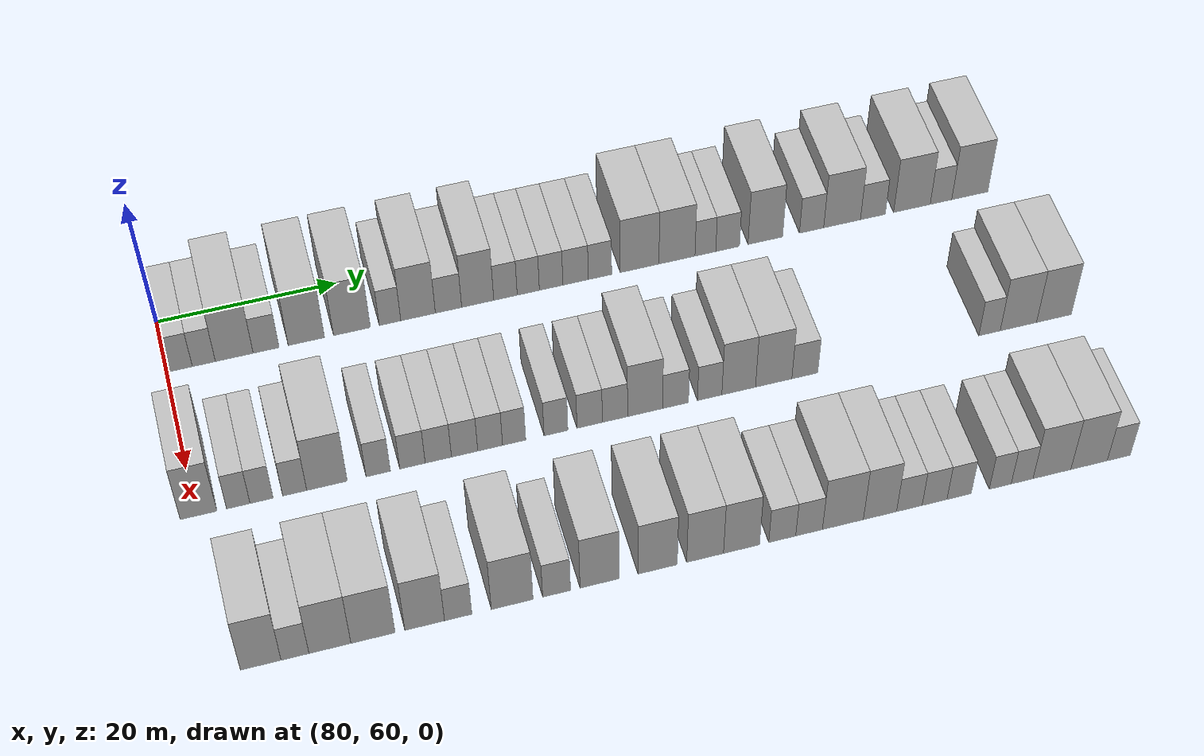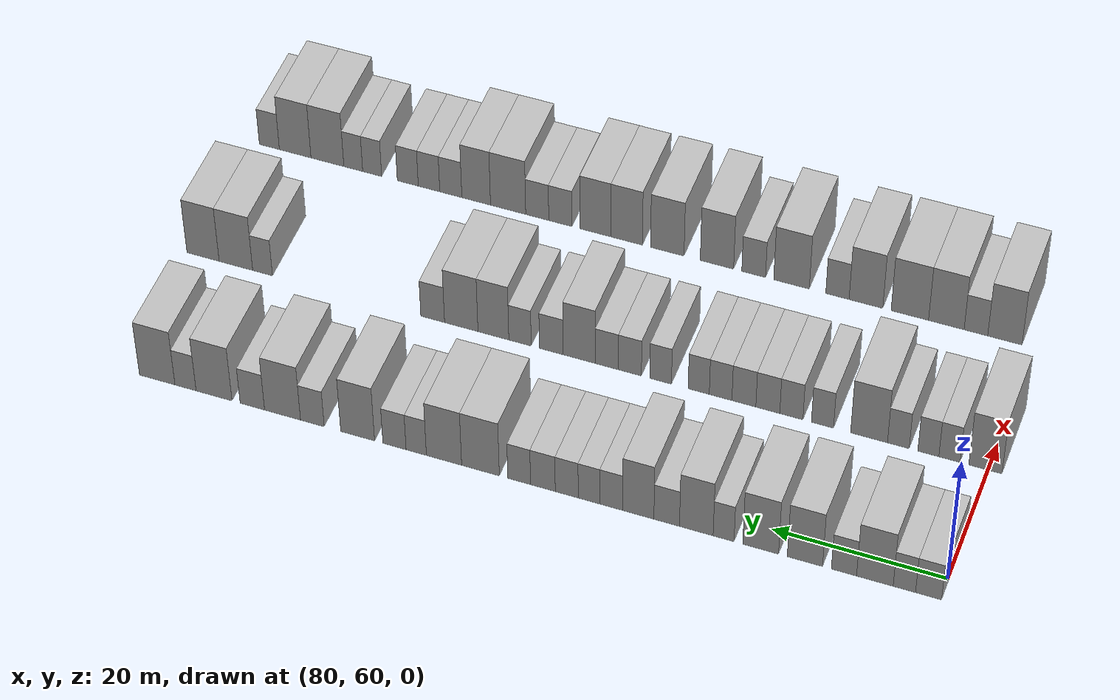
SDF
<sdf version="1.6">
 <world name="default">
  <model name="building_613">
   <static>1</static>
   <pose>82.0000 61.3268 0 0.000000 0.000000 0.000000</pose>
   <link name="link">
    <pose>0 0 3.00 0 0 0</pose>
    <collision name="collision"><geometry><box><size>10.0000 2.9225 6.0000</size></box></geometry></collision>
    <visual name="visual">
     <cast_shadows>0</cast_shadows>
     <geometry><box><size>10.0000 2.9225 6.0000</size></box></geometry>
     <material>
      <script>
       <uri>model://HANNAS_wall/materials/scripts</uri>
       <uri>model://HANNAS_wall/materials/textures</uri>
       <name>vrc/HANNAS_wall</name>
      </script>
     </material>
    </visual>
   </link>
  </model>
  <model name="building_614">
   <static>1</static>
   <pose>82.0000 64.0444 0 0.000000 0.000000 0.000000</pose>
   <link name="link">
    <pose>0 0 3.00 0 0 0</pose>
    <collision name="collision"><geometry><box><size>10.0000 2.5126 6.0000</size></box></geometry></collision>
    <visual name="visual">
     <cast_shadows>0</cast_shadows>
     <geometry><box><size>10.0000 2.5126 6.0000</size></box></geometry>
     <material>
      <script>
       <uri>model://HANNAS_wall/materials/scripts</uri>
       <uri>model://HANNAS_wall/materials/textures</uri>
       <name>vrc/HANNAS_wall</name>
      </script>
     </material>
    </visual>
   </link>
  </model>
  <model name="building_615">
   <static>1</static>
   <pose>82.0000 67.3659 0 0.000000 0.000000 0.000000</pose>
   <link name="link">
    <pose>0 0 4.50 0 0 0</pose>
    <collision name="collision"><geometry><box><size>10.0000 4.1306 9.0000</size></box></geometry></collision>
    <visual name="visual">
     <cast_shadows>0</cast_shadows>
     <geometry><box><size>10.0000 4.1306 9.0000</size></box></geometry>
     <material>
      <script>
       <uri>model://HANNAS_wall/materials/scripts</uri>
       <uri>model://HANNAS_wall/materials/textures</uri>
       <name>vrc/HANNAS_wall</name>
      </script>
     </material>
    </visual>
   </link>
  </model>
  <model name="building_616">
   <static>1</static>
   <pose>82.0000 70.8578 0 0.000000 0.000000 0.000000</pose>
   <link name="link">
    <pose>0 0 3.00 0 0 0</pose>
    <collision name="collision"><geometry><box><size>10.0000 2.8531 6.0000</size></box></geometry></collision>
    <visual name="visual">
     <cast_shadows>0</cast_shadows>
     <geometry><box><size>10.0000 2.8531 6.0000</size></box></geometry>
     <material>
      <script>
       <uri>model://HANNAS_wall/materials/scripts</uri>
       <uri>model://HANNAS_wall/materials/textures</uri>
       <name>vrc/HANNAS_wall</name>
      </script>
     </material>
    </visual>
   </link>
  </model>
  <model name="building_617">
   <static>1</static>
   <pose>82.0000 75.2893 0 0.000000 0.000000 0.000000</pose>
   <link name="link">
    <pose>0 0 4.50 0 0 0</pose>
    <collision name="collision"><geometry><box><size>10.0000 4.0099 9.0000</size></box></geometry></collision>
    <visual name="visual">
     <cast_shadows>0</cast_shadows>
     <geometry><box><size>10.0000 4.0099 9.0000</size></box></geometry>
     <material>
      <script>
       <uri>model://HANNAS_wall/materials/scripts</uri>
       <uri>model://HANNAS_wall/materials/textures</uri>
       <name>vrc/HANNAS_wall</name>
      </script>
     </material>
    </visual>
   </link>
  </model>
  <model name="building_618">
   <static>1</static>
   <pose>82.0000 80.3431 0 0.000000 0.000000 0.000000</pose>
   <link name="link">
    <pose>0 0 4.50 0 0 0</pose>
    <collision name="collision"><geometry><box><size>10.0000 4.0976 9.0000</size></box></geometry></collision>
    <visual name="visual">
     <cast_shadows>0</cast_shadows>
     <geometry><box><size>10.0000 4.0976 9.0000</size></box></geometry>
     <material>
      <script>
       <uri>model://HANNAS_wall/materials/scripts</uri>
       <uri>model://HANNAS_wall/materials/textures</uri>
       <name>vrc/HANNAS_wall</name>
      </script>
     </material>
    </visual>
   </link>
  </model>
  <model name="building_619">
   <static>1</static>
   <pose>82.0000 84.5944 0 0.000000 0.000000 0.000000</pose>
   <link name="link">
    <pose>0 0 3.00 0 0 0</pose>
    <collision name="collision"><geometry><box><size>10.0000 2.4051 6.0000</size></box></geometry></collision>
    <visual name="visual">
     <cast_shadows>0</cast_shadows>
     <geometry><box><size>10.0000 2.4051 6.0000</size></box></geometry>
     <material>
      <script>
       <uri>model://HANNAS_wall/materials/scripts</uri>
       <uri>model://HANNAS_wall/materials/textures</uri>
       <name>vrc/HANNAS_wall</name>
      </script>
     </material>
    </visual>
   </link>
  </model>
  <model name="building_620">
   <static>1</static>
   <pose>82.0000 87.7371 0 0.000000 0.000000 0.000000</pose>
   <link name="link">
    <pose>0 0 4.50 0 0 0</pose>
    <collision name="collision"><geometry><box><size>10.0000 3.8803 9.0000</size></box></geometry></collision>
    <visual name="visual">
     <cast_shadows>0</cast_shadows>
     <geometry><box><size>10.0000 3.8803 9.0000</size></box></geometry>
     <material>
      <script>
       <uri>model://HANNAS_wall/materials/scripts</uri>
       <uri>model://HANNAS_wall/materials/textures</uri>
       <name>vrc/HANNAS_wall</name>
      </script>
     </material>
    </visual>
   </link>
  </model>
  <model name="building_621">
   <static>1</static>
   <pose>82.0000 91.1590 0 0.000000 0.000000 0.000000</pose>
   <link name="link">
    <pose>0 0 3.00 0 0 0</pose>
    <collision name="collision"><geometry><box><size>10.0000 2.9634 6.0000</size></box></geometry></collision>
    <visual name="visual">
     <cast_shadows>0</cast_shadows>
     <geometry><box><size>10.0000 2.9634 6.0000</size></box></geometry>
     <material>
      <script>
       <uri>model://HANNAS_wall/materials/scripts</uri>
       <uri>model://HANNAS_wall/materials/textures</uri>
       <name>vrc/HANNAS_wall</name>
      </script>
     </material>
    </visual>
   </link>
  </model>
  <model name="building_622">
   <static>1</static>
   <pose>82.0000 94.4550 0 0.000000 0.000000 0.000000</pose>
   <link name="link">
    <pose>0 0 4.50 0 0 0</pose>
    <collision name="collision"><geometry><box><size>10.0000 3.6285 9.0000</size></box></geometry></collision>
    <visual name="visual">
     <cast_shadows>0</cast_shadows>
     <geometry><box><size>10.0000 3.6285 9.0000</size></box></geometry>
     <material>
      <script>
       <uri>model://HANNAS_wall/materials/scripts</uri>
       <uri>model://HANNAS_wall/materials/textures</uri>
       <name>vrc/HANNAS_wall</name>
      </script>
     </material>
    </visual>
   </link>
  </model>
  <model name="building_623">
   <static>1</static>
   <pose>82.0000 97.6026 0 0.000000 0.000000 0.000000</pose>
   <link name="link">
    <pose>0 0 3.00 0 0 0</pose>
    <collision name="collision"><geometry><box><size>10.0000 2.6668 6.0000</size></box></geometry></collision>
    <visual name="visual">
     <cast_shadows>0</cast_shadows>
     <geometry><box><size>10.0000 2.6668 6.0000</size></box></geometry>
     <material>
      <script>
       <uri>model://HANNAS_wall/materials/scripts</uri>
       <uri>model://HANNAS_wall/materials/textures</uri>
       <name>vrc/HANNAS_wall</name>
      </script>
     </material>
    </visual>
   </link>
  </model>
  <model name="building_624">
   <static>1</static>
   <pose>82.0000 100.1983 0 0.000000 0.000000 0.000000</pose>
   <link name="link">
    <pose>0 0 3.00 0 0 0</pose>
    <collision name="collision"><geometry><box><size>10.0000 2.5246 6.0000</size></box></geometry></collision>
    <visual name="visual">
     <cast_shadows>0</cast_shadows>
     <geometry><box><size>10.0000 2.5246 6.0000</size></box></geometry>
     <material>
      <script>
       <uri>model://HANNAS_wall/materials/scripts</uri>
       <uri>model://HANNAS_wall/materials/textures</uri>
       <name>vrc/HANNAS_wall</name>
      </script>
     </material>
    </visual>
   </link>
  </model>
  <model name="building_625">
   <static>1</static>
   <pose>82.0000 102.8044 0 0.000000 0.000000 0.000000</pose>
   <link name="link">
    <pose>0 0 3.00 0 0 0</pose>
    <collision name="collision"><geometry><box><size>10.0000 2.6876 6.0000</size></box></geometry></collision>
    <visual name="visual">
     <cast_shadows>0</cast_shadows>
     <geometry><box><size>10.0000 2.6876 6.0000</size></box></geometry>
     <material>
      <script>
       <uri>model://HANNAS_wall/materials/scripts</uri>
       <uri>model://HANNAS_wall/materials/textures</uri>
       <name>vrc/HANNAS_wall</name>
      </script>
     </material>
    </visual>
   </link>
  </model>
  <model name="building_626">
   <static>1</static>
   <pose>82.0000 105.6038 0 0.000000 0.000000 0.000000</pose>
   <link name="link">
    <pose>0 0 3.00 0 0 0</pose>
    <collision name="collision"><geometry><box><size>10.0000 2.9111 6.0000</size></box></geometry></collision>
    <visual name="visual">
     <cast_shadows>0</cast_shadows>
     <geometry><box><size>10.0000 2.9111 6.0000</size></box></geometry>
     <material>
      <script>
       <uri>model://HANNAS_wall/materials/scripts</uri>
       <uri>model://HANNAS_wall/materials/textures</uri>
       <name>vrc/HANNAS_wall</name>
      </script>
     </material>
    </visual>
   </link>
  </model>
  <model name="building_627">
   <static>1</static>
   <pose>82.0000 108.4013 0 0.000000 0.000000 0.000000</pose>
   <link name="link">
    <pose>0 0 3.00 0 0 0</pose>
    <collision name="collision"><geometry><box><size>10.0000 2.6839 6.0000</size></box></geometry></collision>
    <visual name="visual">
     <cast_shadows>0</cast_shadows>
     <geometry><box><size>10.0000 2.6839 6.0000</size></box></geometry>
     <material>
      <script>
       <uri>model://HANNAS_wall/materials/scripts</uri>
       <uri>model://HANNAS_wall/materials/textures</uri>
       <name>vrc/HANNAS_wall</name>
      </script>
     </material>
    </visual>
   </link>
  </model>
  <model name="building_628">
   <static>1</static>
   <pose>82.0000 112.9791 0 0.000000 0.000000 0.000000</pose>
   <link name="link">
    <pose>0 0 4.50 0 0 0</pose>
    <collision name="collision"><geometry><box><size>10.0000 4.4717 9.0000</size></box></geometry></collision>
    <visual name="visual">
     <cast_shadows>0</cast_shadows>
     <geometry><box><size>10.0000 4.4717 9.0000</size></box></geometry>
     <material>
      <script>
       <uri>model://HANNAS_wall/materials/scripts</uri>
       <uri>model://HANNAS_wall/materials/textures</uri>
       <name>vrc/HANNAS_wall</name>
      </script>
     </material>
    </visual>
   </link>
  </model>
  <model name="building_629">
   <static>1</static>
   <pose>82.0000 117.3141 0 0.000000 0.000000 0.000000</pose>
   <link name="link">
    <pose>0 0 4.50 0 0 0</pose>
    <collision name="collision"><geometry><box><size>10.0000 4.1984 9.0000</size></box></geometry></collision>
    <visual name="visual">
     <cast_shadows>0</cast_shadows>
     <geometry><box><size>10.0000 4.1984 9.0000</size></box></geometry>
     <material>
      <script>
       <uri>model://HANNAS_wall/materials/scripts</uri>
       <uri>model://HANNAS_wall/materials/textures</uri>
       <name>vrc/HANNAS_wall</name>
      </script>
     </material>
    </visual>
   </link>
  </model>
  <model name="building_630">
   <static>1</static>
   <pose>82.0000 120.6281 0 0.000000 0.000000 0.000000</pose>
   <link name="link">
    <pose>0 0 3.00 0 0 0</pose>
    <collision name="collision"><geometry><box><size>10.0000 2.4294 6.0000</size></box></geometry></collision>
    <visual name="visual">
     <cast_shadows>0</cast_shadows>
     <geometry><box><size>10.0000 2.4294 6.0000</size></box></geometry>
     <material>
      <script>
       <uri>model://HANNAS_wall/materials/scripts</uri>
       <uri>model://HANNAS_wall/materials/textures</uri>
       <name>vrc/HANNAS_wall</name>
      </script>
     </material>
    </visual>
   </link>
  </model>
  <model name="building_631">
   <static>1</static>
   <pose>82.0000 123.2330 0 0.000000 0.000000 0.000000</pose>
   <link name="link">
    <pose>0 0 3.00 0 0 0</pose>
    <collision name="collision"><geometry><box><size>10.0000 2.7804 6.0000</size></box></geometry></collision>
    <visual name="visual">
     <cast_shadows>0</cast_shadows>
     <geometry><box><size>10.0000 2.7804 6.0000</size></box></geometry>
     <material>
      <script>
       <uri>model://HANNAS_wall/materials/scripts</uri>
       <uri>model://HANNAS_wall/materials/textures</uri>
       <name>vrc/HANNAS_wall</name>
      </script>
     </material>
    </visual>
   </link>
  </model>
  <model name="building_632">
   <static>1</static>
   <pose>82.0000 127.6618 0 0.000000 0.000000 0.000000</pose>
   <link name="link">
    <pose>0 0 4.50 0 0 0</pose>
    <collision name="collision"><geometry><box><size>10.0000 4.0773 9.0000</size></box></geometry></collision>
    <visual name="visual">
     <cast_shadows>0</cast_shadows>
     <geometry><box><size>10.0000 4.0773 9.0000</size></box></geometry>
     <material>
      <script>
       <uri>model://HANNAS_wall/materials/scripts</uri>
       <uri>model://HANNAS_wall/materials/textures</uri>
       <name>vrc/HANNAS_wall</name>
      </script>
     </material>
    </visual>
   </link>
  </model>
  <model name="building_633">
   <static>1</static>
   <pose>82.0000 133.1352 0 0.000000 0.000000 0.000000</pose>
   <link name="link">
    <pose>0 0 3.00 0 0 0</pose>
    <collision name="collision"><geometry><box><size>10.0000 2.8695 6.0000</size></box></geometry></collision>
    <visual name="visual">
     <cast_shadows>0</cast_shadows>
     <geometry><box><size>10.0000 2.8695 6.0000</size></box></geometry>
     <material>
      <script>
       <uri>model://HANNAS_wall/materials/scripts</uri>
       <uri>model://HANNAS_wall/materials/textures</uri>
       <name>vrc/HANNAS_wall</name>
      </script>
     </material>
    </visual>
   </link>
  </model>
  <model name="building_634">
   <static>1</static>
   <pose>82.0000 136.7576 0 0.000000 0.000000 0.000000</pose>
   <link name="link">
    <pose>0 0 4.50 0 0 0</pose>
    <collision name="collision"><geometry><box><size>10.0000 4.3754 9.0000</size></box></geometry></collision>
    <visual name="visual">
     <cast_shadows>0</cast_shadows>
     <geometry><box><size>10.0000 4.3754 9.0000</size></box></geometry>
     <material>
      <script>
       <uri>model://HANNAS_wall/materials/scripts</uri>
       <uri>model://HANNAS_wall/materials/textures</uri>
       <name>vrc/HANNAS_wall</name>
      </script>
     </material>
    </visual>
   </link>
  </model>
  <model name="building_635">
   <static>1</static>
   <pose>82.0000 140.4343 0 0.000000 0.000000 0.000000</pose>
   <link name="link">
    <pose>0 0 3.00 0 0 0</pose>
    <collision name="collision"><geometry><box><size>10.0000 2.9780 6.0000</size></box></geometry></collision>
    <visual name="visual">
     <cast_shadows>0</cast_shadows>
     <geometry><box><size>10.0000 2.9780 6.0000</size></box></geometry>
     <material>
      <script>
       <uri>model://HANNAS_wall/materials/scripts</uri>
       <uri>model://HANNAS_wall/materials/textures</uri>
       <name>vrc/HANNAS_wall</name>
      </script>
     </material>
    </visual>
   </link>
  </model>
  <model name="building_636">
   <static>1</static>
   <pose>82.0000 145.1298 0 0.000000 0.000000 0.000000</pose>
   <link name="link">
    <pose>0 0 4.50 0 0 0</pose>
    <collision name="collision"><geometry><box><size>10.0000 4.4131 9.0000</size></box></geometry></collision>
    <visual name="visual">
     <cast_shadows>0</cast_shadows>
     <geometry><box><size>10.0000 4.4131 9.0000</size></box></geometry>
     <material>
      <script>
       <uri>model://HANNAS_wall/materials/scripts</uri>
       <uri>model://HANNAS_wall/materials/textures</uri>
       <name>vrc/HANNAS_wall</name>
      </script>
     </material>
    </visual>
   </link>
  </model>
  <model name="building_637">
   <static>1</static>
   <pose>82.0000 148.6371 0 0.000000 0.000000 0.000000</pose>
   <link name="link">
    <pose>0 0 3.00 0 0 0</pose>
    <collision name="collision"><geometry><box><size>10.0000 2.6014 6.0000</size></box></geometry></collision>
    <visual name="visual">
     <cast_shadows>0</cast_shadows>
     <geometry><box><size>10.0000 2.6014 6.0000</size></box></geometry>
     <material>
      <script>
       <uri>model://HANNAS_wall/materials/scripts</uri>
       <uri>model://HANNAS_wall/materials/textures</uri>
       <name>vrc/HANNAS_wall</name>
      </script>
     </material>
    </visual>
   </link>
  </model>
  <model name="building_638">
   <static>1</static>
   <pose>82.0000 152.1243 0 0.000000 0.000000 0.000000</pose>
   <link name="link">
    <pose>0 0 4.50 0 0 0</pose>
    <collision name="collision"><geometry><box><size>10.0000 4.3731 9.0000</size></box></geometry></collision>
    <visual name="visual">
     <cast_shadows>0</cast_shadows>
     <geometry><box><size>10.0000 4.3731 9.0000</size></box></geometry>
     <material>
      <script>
       <uri>model://HANNAS_wall/materials/scripts</uri>
       <uri>model://HANNAS_wall/materials/textures</uri>
       <name>vrc/HANNAS_wall</name>
      </script>
     </material>
    </visual>
   </link>
  </model>
  <model name="building_781">
   <static>1</static>
   <pose>101.0000 60.3173 0 0.000000 0.000000 0.000000</pose>
   <link name="link">
    <pose>0 0 4.50 0 0 0</pose>
    <collision name="collision"><geometry><box><size>10.0000 3.8204 9.0000</size></box></geometry></collision>
    <visual name="visual">
     <cast_shadows>0</cast_shadows>
     <geometry><box><size>10.0000 3.8204 9.0000</size></box></geometry>
     <material>
      <script>
       <uri>model://HANNAS_wall/materials/scripts</uri>
       <uri>model://HANNAS_wall/materials/textures</uri>
       <name>vrc/HANNAS_wall</name>
      </script>
     </material>
    </visual>
   </link>
  </model>
  <model name="building_782">
   <static>1</static>
   <pose>101.0000 64.4534 0 0.000000 0.000000 0.000000</pose>
   <link name="link">
    <pose>0 0 3.00 0 0 0</pose>
    <collision name="collision"><geometry><box><size>10.0000 2.4518 6.0000</size></box></geometry></collision>
    <visual name="visual">
     <cast_shadows>0</cast_shadows>
     <geometry><box><size>10.0000 2.4518 6.0000</size></box></geometry>
     <material>
      <script>
       <uri>model://HANNAS_wall/materials/scripts</uri>
       <uri>model://HANNAS_wall/materials/textures</uri>
       <name>vrc/HANNAS_wall</name>
      </script>
     </material>
    </visual>
   </link>
  </model>
  <model name="building_783">
   <static>1</static>
   <pose>101.0000 66.8942 0 0.000000 0.000000 0.000000</pose>
   <link name="link">
    <pose>0 0 3.00 0 0 0</pose>
    <collision name="collision"><geometry><box><size>10.0000 2.4299 6.0000</size></box></geometry></collision>
    <visual name="visual">
     <cast_shadows>0</cast_shadows>
     <geometry><box><size>10.0000 2.4299 6.0000</size></box></geometry>
     <material>
      <script>
       <uri>model://HANNAS_wall/materials/scripts</uri>
       <uri>model://HANNAS_wall/materials/textures</uri>
       <name>vrc/HANNAS_wall</name>
      </script>
     </material>
    </visual>
   </link>
  </model>
  <model name="building_784">
   <static>1</static>
   <pose>101.0000 70.3706 0 0.000000 0.000000 0.000000</pose>
   <link name="link">
    <pose>0 0 3.00 0 0 0</pose>
    <collision name="collision"><geometry><box><size>10.0000 2.5230 6.0000</size></box></geometry></collision>
    <visual name="visual">
     <cast_shadows>0</cast_shadows>
     <geometry><box><size>10.0000 2.5230 6.0000</size></box></geometry>
     <material>
      <script>
       <uri>model://HANNAS_wall/materials/scripts</uri>
       <uri>model://HANNAS_wall/materials/textures</uri>
       <name>vrc/HANNAS_wall</name>
      </script>
     </material>
    </visual>
   </link>
  </model>
  <model name="building_785">
   <static>1</static>
   <pose>101.0000 73.7803 0 0.000000 0.000000 0.000000</pose>
   <link name="link">
    <pose>0 0 4.50 0 0 0</pose>
    <collision name="collision"><geometry><box><size>10.0000 4.2963 9.0000</size></box></geometry></collision>
    <visual name="visual">
     <cast_shadows>0</cast_shadows>
     <geometry><box><size>10.0000 4.2963 9.0000</size></box></geometry>
     <material>
      <script>
       <uri>model://HANNAS_wall/materials/scripts</uri>
       <uri>model://HANNAS_wall/materials/textures</uri>
       <name>vrc/HANNAS_wall</name>
      </script>
     </material>
    </visual>
   </link>
  </model>
  <model name="building_786">
   <static>1</static>
   <pose>101.0000 79.2259 0 0.000000 0.000000 0.000000</pose>
   <link name="link">
    <pose>0 0 3.00 0 0 0</pose>
    <collision name="collision"><geometry><box><size>10.0000 2.5949 6.0000</size></box></geometry></collision>
    <visual name="visual">
     <cast_shadows>0</cast_shadows>
     <geometry><box><size>10.0000 2.5949 6.0000</size></box></geometry>
     <material>
      <script>
       <uri>model://HANNAS_wall/materials/scripts</uri>
       <uri>model://HANNAS_wall/materials/textures</uri>
       <name>vrc/HANNAS_wall</name>
      </script>
     </material>
    </visual>
   </link>
  </model>
  <model name="building_787">
   <static>1</static>
   <pose>101.0000 82.8879 0 0.000000 0.000000 0.000000</pose>
   <link name="link">
    <pose>0 0 3.00 0 0 0</pose>
    <collision name="collision"><geometry><box><size>10.0000 2.7290 6.0000</size></box></geometry></collision>
    <visual name="visual">
     <cast_shadows>0</cast_shadows>
     <geometry><box><size>10.0000 2.7290 6.0000</size></box></geometry>
     <material>
      <script>
       <uri>model://HANNAS_wall/materials/scripts</uri>
       <uri>model://HANNAS_wall/materials/textures</uri>
       <name>vrc/HANNAS_wall</name>
      </script>
     </material>
    </visual>
   </link>
  </model>
  <model name="building_788">
   <static>1</static>
   <pose>101.0000 85.6639 0 0.000000 0.000000 0.000000</pose>
   <link name="link">
    <pose>0 0 3.00 0 0 0</pose>
    <collision name="collision"><geometry><box><size>10.0000 2.8231 6.0000</size></box></geometry></collision>
    <visual name="visual">
     <cast_shadows>0</cast_shadows>
     <geometry><box><size>10.0000 2.8231 6.0000</size></box></geometry>
     <material>
      <script>
       <uri>model://HANNAS_wall/materials/scripts</uri>
       <uri>model://HANNAS_wall/materials/textures</uri>
       <name>vrc/HANNAS_wall</name>
      </script>
     </material>
    </visual>
   </link>
  </model>
  <model name="building_789">
   <static>1</static>
   <pose>101.0000 88.4938 0 0.000000 0.000000 0.000000</pose>
   <link name="link">
    <pose>0 0 3.00 0 0 0</pose>
    <collision name="collision"><geometry><box><size>10.0000 2.8366 6.0000</size></box></geometry></collision>
    <visual name="visual">
     <cast_shadows>0</cast_shadows>
     <geometry><box><size>10.0000 2.8366 6.0000</size></box></geometry>
     <material>
      <script>
       <uri>model://HANNAS_wall/materials/scripts</uri>
       <uri>model://HANNAS_wall/materials/textures</uri>
       <name>vrc/HANNAS_wall</name>
      </script>
     </material>
    </visual>
   </link>
  </model>
  <model name="building_790">
   <static>1</static>
   <pose>101.0000 91.2560 0 0.000000 0.000000 0.000000</pose>
   <link name="link">
    <pose>0 0 3.00 0 0 0</pose>
    <collision name="collision"><geometry><box><size>10.0000 2.6878 6.0000</size></box></geometry></collision>
    <visual name="visual">
     <cast_shadows>0</cast_shadows>
     <geometry><box><size>10.0000 2.6878 6.0000</size></box></geometry>
     <material>
      <script>
       <uri>model://HANNAS_wall/materials/scripts</uri>
       <uri>model://HANNAS_wall/materials/textures</uri>
       <name>vrc/HANNAS_wall</name>
      </script>
     </material>
    </visual>
   </link>
  </model>
  <model name="building_791">
   <static>1</static>
   <pose>101.0000 93.8546 0 0.000000 0.000000 0.000000</pose>
   <link name="link">
    <pose>0 0 3.00 0 0 0</pose>
    <collision name="collision"><geometry><box><size>10.0000 2.5094 6.0000</size></box></geometry></collision>
    <visual name="visual">
     <cast_shadows>0</cast_shadows>
     <geometry><box><size>10.0000 2.5094 6.0000</size></box></geometry>
     <material>
      <script>
       <uri>model://HANNAS_wall/materials/scripts</uri>
       <uri>model://HANNAS_wall/materials/textures</uri>
       <name>vrc/HANNAS_wall</name>
      </script>
     </material>
    </visual>
   </link>
  </model>
  <model name="building_792">
   <static>1</static>
   <pose>101.0000 98.4092 0 0.000000 0.000000 0.000000</pose>
   <link name="link">
    <pose>0 0 3.00 0 0 0</pose>
    <collision name="collision"><geometry><box><size>10.0000 2.5998 6.0000</size></box></geometry></collision>
    <visual name="visual">
     <cast_shadows>0</cast_shadows>
     <geometry><box><size>10.0000 2.5998 6.0000</size></box></geometry>
     <material>
      <script>
       <uri>model://HANNAS_wall/materials/scripts</uri>
       <uri>model://HANNAS_wall/materials/textures</uri>
       <name>vrc/HANNAS_wall</name>
      </script>
     </material>
    </visual>
   </link>
  </model>
  <model name="building_793">
   <static>1</static>
   <pose>101.0000 102.0999 0 0.000000 0.000000 0.000000</pose>
   <link name="link">
    <pose>0 0 3.00 0 0 0</pose>
    <collision name="collision"><geometry><box><size>10.0000 2.7816 6.0000</size></box></geometry></collision>
    <visual name="visual">
     <cast_shadows>0</cast_shadows>
     <geometry><box><size>10.0000 2.7816 6.0000</size></box></geometry>
     <material>
      <script>
       <uri>model://HANNAS_wall/materials/scripts</uri>
       <uri>model://HANNAS_wall/materials/textures</uri>
       <name>vrc/HANNAS_wall</name>
      </script>
     </material>
    </visual>
   </link>
  </model>
  <model name="building_794">
   <static>1</static>
   <pose>101.0000 104.8756 0 0.000000 0.000000 0.000000</pose>
   <link name="link">
    <pose>0 0 3.00 0 0 0</pose>
    <collision name="collision"><geometry><box><size>10.0000 2.7697 6.0000</size></box></geometry></collision>
    <visual name="visual">
     <cast_shadows>0</cast_shadows>
     <geometry><box><size>10.0000 2.7697 6.0000</size></box></geometry>
     <material>
      <script>
       <uri>model://HANNAS_wall/materials/scripts</uri>
       <uri>model://HANNAS_wall/materials/textures</uri>
       <name>vrc/HANNAS_wall</name>
      </script>
     </material>
    </visual>
   </link>
  </model>
  <model name="building_795">
   <static>1</static>
   <pose>101.0000 108.1957 0 0.000000 0.000000 0.000000</pose>
   <link name="link">
    <pose>0 0 4.50 0 0 0</pose>
    <collision name="collision"><geometry><box><size>10.0000 3.8705 9.0000</size></box></geometry></collision>
    <visual name="visual">
     <cast_shadows>0</cast_shadows>
     <geometry><box><size>10.0000 3.8705 9.0000</size></box></geometry>
     <material>
      <script>
       <uri>model://HANNAS_wall/materials/scripts</uri>
       <uri>model://HANNAS_wall/materials/textures</uri>
       <name>vrc/HANNAS_wall</name>
      </script>
     </material>
    </visual>
   </link>
  </model>
  <model name="building_796">
   <static>1</static>
   <pose>101.0000 111.5759 0 0.000000 0.000000 0.000000</pose>
   <link name="link">
    <pose>0 0 3.00 0 0 0</pose>
    <collision name="collision"><geometry><box><size>10.0000 2.8898 6.0000</size></box></geometry></collision>
    <visual name="visual">
     <cast_shadows>0</cast_shadows>
     <geometry><box><size>10.0000 2.8898 6.0000</size></box></geometry>
     <material>
      <script>
       <uri>model://HANNAS_wall/materials/scripts</uri>
       <uri>model://HANNAS_wall/materials/textures</uri>
       <name>vrc/HANNAS_wall</name>
      </script>
     </material>
    </visual>
   </link>
  </model>
  <model name="building_797">
   <static>1</static>
   <pose>101.0000 115.3852 0 0.000000 0.000000 0.000000</pose>
   <link name="link">
    <pose>0 0 3.00 0 0 0</pose>
    <collision name="collision"><geometry><box><size>10.0000 2.7288 6.0000</size></box></geometry></collision>
    <visual name="visual">
     <cast_shadows>0</cast_shadows>
     <geometry><box><size>10.0000 2.7288 6.0000</size></box></geometry>
     <material>
      <script>
       <uri>model://HANNAS_wall/materials/scripts</uri>
       <uri>model://HANNAS_wall/materials/textures</uri>
       <name>vrc/HANNAS_wall</name>
      </script>
     </material>
    </visual>
   </link>
  </model>
  <model name="building_798">
   <static>1</static>
   <pose>101.0000 118.6375 0 0.000000 0.000000 0.000000</pose>
   <link name="link">
    <pose>0 0 4.50 0 0 0</pose>
    <collision name="collision"><geometry><box><size>10.0000 3.7758 9.0000</size></box></geometry></collision>
    <visual name="visual">
     <cast_shadows>0</cast_shadows>
     <geometry><box><size>10.0000 3.7758 9.0000</size></box></geometry>
     <material>
      <script>
       <uri>model://HANNAS_wall/materials/scripts</uri>
       <uri>model://HANNAS_wall/materials/textures</uri>
       <name>vrc/HANNAS_wall</name>
      </script>
     </material>
    </visual>
   </link>
  </model>
  <model name="building_799">
   <static>1</static>
   <pose>101.0000 122.5752 0 0.000000 0.000000 0.000000</pose>
   <link name="link">
    <pose>0 0 4.50 0 0 0</pose>
    <collision name="collision"><geometry><box><size>10.0000 4.0997 9.0000</size></box></geometry></collision>
    <visual name="visual">
     <cast_shadows>0</cast_shadows>
     <geometry><box><size>10.0000 4.0997 9.0000</size></box></geometry>
     <material>
      <script>
       <uri>model://HANNAS_wall/materials/scripts</uri>
       <uri>model://HANNAS_wall/materials/textures</uri>
       <name>vrc/HANNAS_wall</name>
      </script>
     </material>
    </visual>
   </link>
  </model>
  <model name="building_800">
   <static>1</static>
   <pose>101.0000 126.0878 0 0.000000 0.000000 0.000000</pose>
   <link name="link">
    <pose>0 0 3.00 0 0 0</pose>
    <collision name="collision"><geometry><box><size>10.0000 2.9255 6.0000</size></box></geometry></collision>
    <visual name="visual">
     <cast_shadows>0</cast_shadows>
     <geometry><box><size>10.0000 2.9255 6.0000</size></box></geometry>
     <material>
      <script>
       <uri>model://HANNAS_wall/materials/scripts</uri>
       <uri>model://HANNAS_wall/materials/textures</uri>
       <name>vrc/HANNAS_wall</name>
      </script>
     </material>
    </visual>
   </link>
  </model>
  <model name="building_801">
   <static>1</static>
   <pose>101.0000 147.2904 0 0.000000 0.000000 0.000000</pose>
   <link name="link">
    <pose>0 0 3.00 0 0 0</pose>
    <collision name="collision"><geometry><box><size>10.0000 2.4932 6.0000</size></box></geometry></collision>
    <visual name="visual">
     <cast_shadows>0</cast_shadows>
     <geometry><box><size>10.0000 2.4932 6.0000</size></box></geometry>
     <material>
      <script>
       <uri>model://HANNAS_wall/materials/scripts</uri>
       <uri>model://HANNAS_wall/materials/textures</uri>
       <name>vrc/HANNAS_wall</name>
      </script>
     </material>
    </visual>
   </link>
  </model>
  <model name="building_802">
   <static>1</static>
   <pose>101.0000 150.6577 0 0.000000 0.000000 0.000000</pose>
   <link name="link">
    <pose>0 0 4.50 0 0 0</pose>
    <collision name="collision"><geometry><box><size>10.0000 4.2414 9.0000</size></box></geometry></collision>
    <visual name="visual">
     <cast_shadows>0</cast_shadows>
     <geometry><box><size>10.0000 4.2414 9.0000</size></box></geometry>
     <material>
      <script>
       <uri>model://HANNAS_wall/materials/scripts</uri>
       <uri>model://HANNAS_wall/materials/textures</uri>
       <name>vrc/HANNAS_wall</name>
      </script>
     </material>
    </visual>
   </link>
  </model>
  <model name="building_803">
   <static>1</static>
   <pose>101.0000 154.8183 0 0.000000 0.000000 0.000000</pose>
   <link name="link">
    <pose>0 0 4.50 0 0 0</pose>
    <collision name="collision"><geometry><box><size>10.0000 4.0798 9.0000</size></box></geometry></collision>
    <visual name="visual">
     <cast_shadows>0</cast_shadows>
     <geometry><box><size>10.0000 4.0798 9.0000</size></box></geometry>
     <material>
      <script>
       <uri>model://HANNAS_wall/materials/scripts</uri>
       <uri>model://HANNAS_wall/materials/textures</uri>
       <name>vrc/HANNAS_wall</name>
      </script>
     </material>
    </visual>
   </link>
  </model>
  <model name="building_950">
   <static>1</static>
   <pose>120.0000 63.3438 0 0.000000 0.000000 0.000000</pose>
   <link name="link">
    <pose>0 0 4.50 0 0 0</pose>
    <collision name="collision"><geometry><box><size>10.0000 4.0626 9.0000</size></box></geometry></collision>
    <visual name="visual">
     <cast_shadows>0</cast_shadows>
     <geometry><box><size>10.0000 4.0626 9.0000</size></box></geometry>
     <material>
      <script>
       <uri>model://HANNAS_wall/materials/scripts</uri>
       <uri>model://HANNAS_wall/materials/textures</uri>
       <name>vrc/HANNAS_wall</name>
      </script>
     </material>
    </visual>
   </link>
  </model>
  <model name="building_951">
   <static>1</static>
   <pose>120.0000 66.7760 0 0.000000 0.000000 0.000000</pose>
   <link name="link">
    <pose>0 0 3.00 0 0 0</pose>
    <collision name="collision"><geometry><box><size>10.0000 2.8019 6.0000</size></box></geometry></collision>
    <visual name="visual">
     <cast_shadows>0</cast_shadows>
     <geometry><box><size>10.0000 2.8019 6.0000</size></box></geometry>
     <material>
      <script>
       <uri>model://HANNAS_wall/materials/scripts</uri>
       <uri>model://HANNAS_wall/materials/textures</uri>
       <name>vrc/HANNAS_wall</name>
      </script>
     </material>
    </visual>
   </link>
  </model>
  <model name="building_952">
   <static>1</static>
   <pose>120.0000 70.2959 0 0.000000 0.000000 0.000000</pose>
   <link name="link">
    <pose>0 0 4.50 0 0 0</pose>
    <collision name="collision"><geometry><box><size>10.0000 4.2379 9.0000</size></box></geometry></collision>
    <visual name="visual">
     <cast_shadows>0</cast_shadows>
     <geometry><box><size>10.0000 4.2379 9.0000</size></box></geometry>
     <material>
      <script>
       <uri>model://HANNAS_wall/materials/scripts</uri>
       <uri>model://HANNAS_wall/materials/textures</uri>
       <name>vrc/HANNAS_wall</name>
      </script>
     </material>
    </visual>
   </link>
  </model>
  <model name="building_953">
   <static>1</static>
   <pose>120.0000 74.6539 0 0.000000 0.000000 0.000000</pose>
   <link name="link">
    <pose>0 0 4.50 0 0 0</pose>
    <collision name="collision"><geometry><box><size>10.0000 4.4781 9.0000</size></box></geometry></collision>
    <visual name="visual">
     <cast_shadows>0</cast_shadows>
     <geometry><box><size>10.0000 4.4781 9.0000</size></box></geometry>
     <material>
      <script>
       <uri>model://HANNAS_wall/materials/scripts</uri>
       <uri>model://HANNAS_wall/materials/textures</uri>
       <name>vrc/HANNAS_wall</name>
      </script>
     </material>
    </visual>
   </link>
  </model>
  <model name="building_954">
   <static>1</static>
   <pose>120.0000 79.9201 0 0.000000 0.000000 0.000000</pose>
   <link name="link">
    <pose>0 0 4.50 0 0 0</pose>
    <collision name="collision"><geometry><box><size>10.0000 4.0544 9.0000</size></box></geometry></collision>
    <visual name="visual">
     <cast_shadows>0</cast_shadows>
     <geometry><box><size>10.0000 4.0544 9.0000</size></box></geometry>
     <material>
      <script>
       <uri>model://HANNAS_wall/materials/scripts</uri>
       <uri>model://HANNAS_wall/materials/textures</uri>
       <name>vrc/HANNAS_wall</name>
      </script>
     </material>
    </visual>
   </link>
  </model>
  <model name="building_955">
   <static>1</static>
   <pose>120.0000 83.3529 0 0.000000 0.000000 0.000000</pose>
   <link name="link">
    <pose>0 0 3.00 0 0 0</pose>
    <collision name="collision"><geometry><box><size>10.0000 2.8112 6.0000</size></box></geometry></collision>
    <visual name="visual">
     <cast_shadows>0</cast_shadows>
     <geometry><box><size>10.0000 2.8112 6.0000</size></box></geometry>
     <material>
      <script>
       <uri>model://HANNAS_wall/materials/scripts</uri>
       <uri>model://HANNAS_wall/materials/textures</uri>
       <name>vrc/HANNAS_wall</name>
      </script>
     </material>
    </visual>
   </link>
  </model>
  <model name="building_956">
   <static>1</static>
   <pose>120.0000 88.9189 0 0.000000 0.000000 0.000000</pose>
   <link name="link">
    <pose>0 0 4.50 0 0 0</pose>
    <collision name="collision"><geometry><box><size>10.0000 4.3208 9.0000</size></box></geometry></collision>
    <visual name="visual">
     <cast_shadows>0</cast_shadows>
     <geometry><box><size>10.0000 4.3208 9.0000</size></box></geometry>
     <material>
      <script>
       <uri>model://HANNAS_wall/materials/scripts</uri>
       <uri>model://HANNAS_wall/materials/textures</uri>
       <name>vrc/HANNAS_wall</name>
      </script>
     </material>
    </visual>
   </link>
  </model>
  <model name="building_957">
   <static>1</static>
   <pose>120.0000 93.5283 0 0.000000 0.000000 0.000000</pose>
   <link name="link">
    <pose>0 0 3.00 0 0 0</pose>
    <collision name="collision"><geometry><box><size>10.0000 2.8978 6.0000</size></box></geometry></collision>
    <visual name="visual">
     <cast_shadows>0</cast_shadows>
     <geometry><box><size>10.0000 2.8978 6.0000</size></box></geometry>
     <material>
      <script>
       <uri>model://HANNAS_wall/materials/scripts</uri>
       <uri>model://HANNAS_wall/materials/textures</uri>
       <name>vrc/HANNAS_wall</name>
      </script>
     </material>
    </visual>
   </link>
  </model>
  <model name="building_958">
   <static>1</static>
   <pose>120.0000 98.0206 0 0.000000 0.000000 0.000000</pose>
   <link name="link">
    <pose>0 0 4.50 0 0 0</pose>
    <collision name="collision"><geometry><box><size>10.0000 4.0868 9.0000</size></box></geometry></collision>
    <visual name="visual">
     <cast_shadows>0</cast_shadows>
     <geometry><box><size>10.0000 4.0868 9.0000</size></box></geometry>
     <material>
      <script>
       <uri>model://HANNAS_wall/materials/scripts</uri>
       <uri>model://HANNAS_wall/materials/textures</uri>
       <name>vrc/HANNAS_wall</name>
      </script>
     </material>
    </visual>
   </link>
  </model>
  <model name="building_959">
   <static>1</static>
   <pose>120.0000 104.1326 0 0.000000 0.000000 0.000000</pose>
   <link name="link">
    <pose>0 0 4.50 0 0 0</pose>
    <collision name="collision"><geometry><box><size>10.0000 4.1371 9.0000</size></box></geometry></collision>
    <visual name="visual">
     <cast_shadows>0</cast_shadows>
     <geometry><box><size>10.0000 4.1371 9.0000</size></box></geometry>
     <material>
      <script>
       <uri>model://HANNAS_wall/materials/scripts</uri>
       <uri>model://HANNAS_wall/materials/textures</uri>
       <name>vrc/HANNAS_wall</name>
      </script>
     </material>
    </visual>
   </link>
  </model>
  <model name="building_960">
   <static>1</static>
   <pose>120.0000 109.1596 0 0.000000 0.000000 0.000000</pose>
   <link name="link">
    <pose>0 0 4.50 0 0 0</pose>
    <collision name="collision"><geometry><box><size>10.0000 3.9170 9.0000</size></box></geometry></collision>
    <visual name="visual">
     <cast_shadows>0</cast_shadows>
     <geometry><box><size>10.0000 3.9170 9.0000</size></box></geometry>
     <material>
      <script>
       <uri>model://HANNAS_wall/materials/scripts</uri>
       <uri>model://HANNAS_wall/materials/textures</uri>
       <name>vrc/HANNAS_wall</name>
      </script>
     </material>
    </visual>
   </link>
  </model>
  <model name="building_961">
   <static>1</static>
   <pose>120.0000 113.0430 0 0.000000 0.000000 0.000000</pose>
   <link name="link">
    <pose>0 0 4.50 0 0 0</pose>
    <collision name="collision"><geometry><box><size>10.0000 3.8498 9.0000</size></box></geometry></collision>
    <visual name="visual">
     <cast_shadows>0</cast_shadows>
     <geometry><box><size>10.0000 3.8498 9.0000</size></box></geometry>
     <material>
      <script>
       <uri>model://HANNAS_wall/materials/scripts</uri>
       <uri>model://HANNAS_wall/materials/textures</uri>
       <name>vrc/HANNAS_wall</name>
      </script>
     </material>
    </visual>
   </link>
  </model>
  <model name="building_962">
   <static>1</static>
   <pose>120.0000 117.4175 0 0.000000 0.000000 0.000000</pose>
   <link name="link">
    <pose>0 0 3.00 0 0 0</pose>
    <collision name="collision"><geometry><box><size>10.0000 2.8992 6.0000</size></box></geometry></collision>
    <visual name="visual">
     <cast_shadows>0</cast_shadows>
     <geometry><box><size>10.0000 2.8992 6.0000</size></box></geometry>
     <material>
      <script>
       <uri>model://HANNAS_wall/materials/scripts</uri>
       <uri>model://HANNAS_wall/materials/textures</uri>
       <name>vrc/HANNAS_wall</name>
      </script>
     </material>
    </visual>
   </link>
  </model>
  <model name="building_963">
   <static>1</static>
   <pose>120.0000 120.3097 0 0.000000 0.000000 0.000000</pose>
   <link name="link">
    <pose>0 0 3.00 0 0 0</pose>
    <collision name="collision"><geometry><box><size>10.0000 2.8852 6.0000</size></box></geometry></collision>
    <visual name="visual">
     <cast_shadows>0</cast_shadows>
     <geometry><box><size>10.0000 2.8852 6.0000</size></box></geometry>
     <material>
      <script>
       <uri>model://HANNAS_wall/materials/scripts</uri>
       <uri>model://HANNAS_wall/materials/textures</uri>
       <name>vrc/HANNAS_wall</name>
      </script>
     </material>
    </visual>
   </link>
  </model>
  <model name="building_964">
   <static>1</static>
   <pose>120.0000 123.9714 0 0.000000 0.000000 0.000000</pose>
   <link name="link">
    <pose>0 0 4.50 0 0 0</pose>
    <collision name="collision"><geometry><box><size>10.0000 4.4381 9.0000</size></box></geometry></collision>
    <visual name="visual">
     <cast_shadows>0</cast_shadows>
     <geometry><box><size>10.0000 4.4381 9.0000</size></box></geometry>
     <material>
      <script>
       <uri>model://HANNAS_wall/materials/scripts</uri>
       <uri>model://HANNAS_wall/materials/textures</uri>
       <name>vrc/HANNAS_wall</name>
      </script>
     </material>
    </visual>
   </link>
  </model>
  <model name="building_965">
   <static>1</static>
   <pose>120.0000 128.0031 0 0.000000 0.000000 0.000000</pose>
   <link name="link">
    <pose>0 0 4.50 0 0 0</pose>
    <collision name="collision"><geometry><box><size>10.0000 3.6252 9.0000</size></box></geometry></collision>
    <visual name="visual">
     <cast_shadows>0</cast_shadows>
     <geometry><box><size>10.0000 3.6252 9.0000</size></box></geometry>
     <material>
      <script>
       <uri>model://HANNAS_wall/materials/scripts</uri>
       <uri>model://HANNAS_wall/materials/textures</uri>
       <name>vrc/HANNAS_wall</name>
      </script>
     </material>
    </visual>
   </link>
  </model>
  <model name="building_966">
   <static>1</static>
   <pose>120.0000 131.2166 0 0.000000 0.000000 0.000000</pose>
   <link name="link">
    <pose>0 0 3.00 0 0 0</pose>
    <collision name="collision"><geometry><box><size>10.0000 2.8018 6.0000</size></box></geometry></collision>
    <visual name="visual">
     <cast_shadows>0</cast_shadows>
     <geometry><box><size>10.0000 2.8018 6.0000</size></box></geometry>
     <material>
      <script>
       <uri>model://HANNAS_wall/materials/scripts</uri>
       <uri>model://HANNAS_wall/materials/textures</uri>
       <name>vrc/HANNAS_wall</name>
      </script>
     </material>
    </visual>
   </link>
  </model>
  <model name="building_967">
   <static>1</static>
   <pose>120.0000 133.9839 0 0.000000 0.000000 0.000000</pose>
   <link name="link">
    <pose>0 0 3.00 0 0 0</pose>
    <collision name="collision"><geometry><box><size>10.0000 2.7330 6.0000</size></box></geometry></collision>
    <visual name="visual">
     <cast_shadows>0</cast_shadows>
     <geometry><box><size>10.0000 2.7330 6.0000</size></box></geometry>
     <material>
      <script>
       <uri>model://HANNAS_wall/materials/scripts</uri>
       <uri>model://HANNAS_wall/materials/textures</uri>
       <name>vrc/HANNAS_wall</name>
      </script>
     </material>
    </visual>
   </link>
  </model>
  <model name="building_968">
   <static>1</static>
   <pose>120.0000 136.6871 0 0.000000 0.000000 0.000000</pose>
   <link name="link">
    <pose>0 0 3.00 0 0 0</pose>
    <collision name="collision"><geometry><box><size>10.0000 2.6734 6.0000</size></box></geometry></collision>
    <visual name="visual">
     <cast_shadows>0</cast_shadows>
     <geometry><box><size>10.0000 2.6734 6.0000</size></box></geometry>
     <material>
      <script>
       <uri>model://HANNAS_wall/materials/scripts</uri>
       <uri>model://HANNAS_wall/materials/textures</uri>
       <name>vrc/HANNAS_wall</name>
      </script>
     </material>
    </visual>
   </link>
  </model>
  <model name="building_969">
   <static>1</static>
   <pose>120.0000 141.2411 0 0.000000 0.000000 0.000000</pose>
   <link name="link">
    <pose>0 0 3.00 0 0 0</pose>
    <collision name="collision"><geometry><box><size>10.0000 2.4346 6.0000</size></box></geometry></collision>
    <visual name="visual">
     <cast_shadows>0</cast_shadows>
     <geometry><box><size>10.0000 2.4346 6.0000</size></box></geometry>
     <material>
      <script>
       <uri>model://HANNAS_wall/materials/scripts</uri>
       <uri>model://HANNAS_wall/materials/textures</uri>
       <name>vrc/HANNAS_wall</name>
      </script>
     </material>
    </visual>
   </link>
  </model>
  <model name="building_970">
   <static>1</static>
   <pose>120.0000 143.6696 0 0.000000 0.000000 0.000000</pose>
   <link name="link">
    <pose>0 0 3.00 0 0 0</pose>
    <collision name="collision"><geometry><box><size>10.0000 2.4224 6.0000</size></box></geometry></collision>
    <visual name="visual">
     <cast_shadows>0</cast_shadows>
     <geometry><box><size>10.0000 2.4224 6.0000</size></box></geometry>
     <material>
      <script>
       <uri>model://HANNAS_wall/materials/scripts</uri>
       <uri>model://HANNAS_wall/materials/textures</uri>
       <name>vrc/HANNAS_wall</name>
      </script>
     </material>
    </visual>
   </link>
  </model>
  <model name="building_971">
   <static>1</static>
   <pose>120.0000 146.9996 0 0.000000 0.000000 0.000000</pose>
   <link name="link">
    <pose>0 0 4.50 0 0 0</pose>
    <collision name="collision"><geometry><box><size>10.0000 4.2376 9.0000</size></box></geometry></collision>
    <visual name="visual">
     <cast_shadows>0</cast_shadows>
     <geometry><box><size>10.0000 4.2376 9.0000</size></box></geometry>
     <material>
      <script>
       <uri>model://HANNAS_wall/materials/scripts</uri>
       <uri>model://HANNAS_wall/materials/textures</uri>
       <name>vrc/HANNAS_wall</name>
      </script>
     </material>
    </visual>
   </link>
  </model>
  <model name="building_972">
   <static>1</static>
   <pose>120.0000 151.1644 0 0.000000 0.000000 0.000000</pose>
   <link name="link">
    <pose>0 0 4.50 0 0 0</pose>
    <collision name="collision"><geometry><box><size>10.0000 4.0920 9.0000</size></box></geometry></collision>
    <visual name="visual">
     <cast_shadows>0</cast_shadows>
     <geometry><box><size>10.0000 4.0920 9.0000</size></box></geometry>
     <material>
      <script>
       <uri>model://HANNAS_wall/materials/scripts</uri>
       <uri>model://HANNAS_wall/materials/textures</uri>
       <name>vrc/HANNAS_wall</name>
      </script>
     </material>
    </visual>
   </link>
  </model>
  <model name="building_973">
   <static>1</static>
   <pose>120.0000 154.5067 0 0.000000 0.000000 0.000000</pose>
   <link name="link">
    <pose>0 0 3.00 0 0 0</pose>
    <collision name="collision"><geometry><box><size>10.0000 2.5927 6.0000</size></box></geometry></collision>
    <visual name="visual">
     <cast_shadows>0</cast_shadows>
     <geometry><box><size>10.0000 2.5927 6.0000</size></box></geometry>
     <material>
      <script>
       <uri>model://HANNAS_wall/materials/scripts</uri>
       <uri>model://HANNAS_wall/materials/textures</uri>
       <name>vrc/HANNAS_wall</name>
      </script>
     </material>
    </visual>
   </link>
  </model>
 </world>
</sdf>
